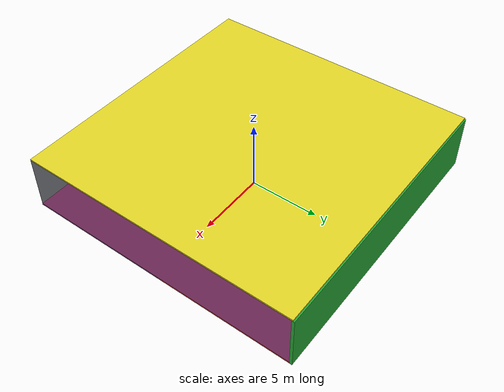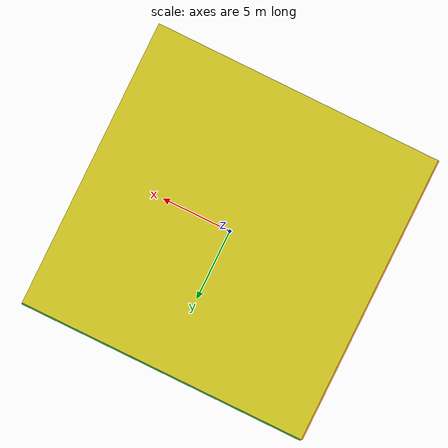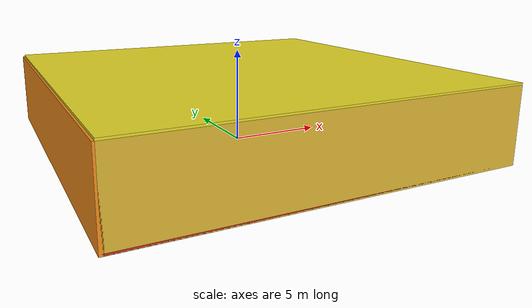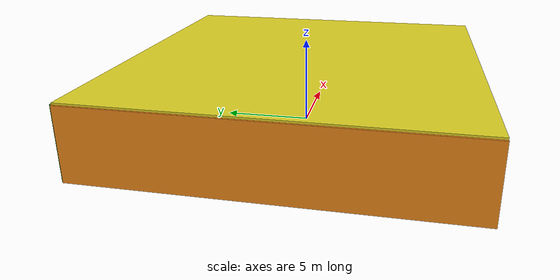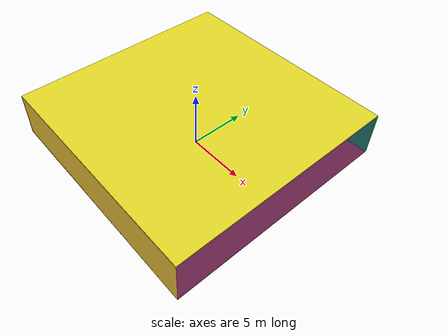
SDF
<sdf version="1.4">
 <world name="default">
  <physics type="ode">
   <max_step_size>0.001</max_step_size>
   <real_time_factor>1</real_time_factor>
   <real_time_update_rate>1000</real_time_update_rate>
   <gravity>0 0 -9.8</gravity>
  </physics>
  <scene><ambient>0.4 0.4 0.4 1</ambient><background>0.7 0.7 0.7 1</background><shadows>1</shadows></scene>
  <model name="Surrounding">
   <static>1</static>
   <link name="Ceiling">
    <collision name="Ceiling_Collision"><geometry><box><size>20 20 0.1</size></box></geometry></collision>
    <visual name="Ceiling_Visual">
     <geometry><box><size>20 20 0.1</size></box></geometry>
     <material>
      <script><uri>file://media/materials/scripts/gazebo.material</uri><name>Gazebo/YellowGlow</name></script>
     </material>
    </visual>
    <pose>0 0 4.05 0 0 0</pose>
   </link>
   <link name="Wall_South">
    <collision name="Wall_South_Collision">
     <geometry><box><size>20 0 4</size></box></geometry>
     <pose>0 0 2 0 -0 0</pose>
    </collision>
    <visual name="Wall_South_Visual">
     <pose>0 0 2 0 -0 0</pose>
     <geometry><box><size>20 0 4</size></box></geometry>
     <material>
      <script><uri>file://media/materials/scripts/gazebo.material</uri><name>Gazebo/Gold</name></script>
     </material>
    </visual>
    <velocity_decay><linear>0</linear><angular>0</angular></velocity_decay>
    <pose>0 -10 0 0 -0 0</pose>
   </link>
   <link name="Wall_East">
    <collision name="Wall_21_Collision">
     <geometry><box><size>20 0 4</size></box></geometry>
     <pose>0 0 2 0 -0 0</pose>
    </collision>
    <visual name="Wall_21_Visual">
     <pose>0 0 2 0 -0 0</pose>
     <geometry><box><size>20 0 4</size></box></geometry>
     <material>
      <script><uri>file://media/materials/scripts/gazebo.material</uri><name>Gazebo/BlueTransparent</name></script>
     </material>
    </visual>
    <velocity_decay><linear>0</linear><angular>0</angular></velocity_decay>
    <pose>10 0 0 0 -0 1.5708</pose>
   </link>
   <link name="Wall_North">
    <collision name="Wall_22_Collision">
     <geometry><box><size>20 0.2 4</size></box></geometry>
     <pose>0 0 2 0 -0 0</pose>
    </collision>
    <visual name="Wall_22_Visual">
     <pose>0 0 2 0 -0 0</pose>
     <geometry><box><size>20 0.2 4</size></box></geometry>
     <material>
      <script><uri>file://media/materials/scripts/gazebo.material</uri><name>Gazebo/Green</name></script>
     </material>
    </visual>
    <velocity_decay><linear>0</linear><angular>0</angular></velocity_decay>
    <pose>0 10 0 0 -0 0</pose>
   </link>
   <link name="Wall_West">
    <collision name="Wall_23_Collision">
     <geometry><box><size>20 0.2 4</size></box></geometry>
     <pose>0 0 2 0 -0 0</pose>
    </collision>
    <visual name="Wall_23_Visual">
     <pose>0 0 2 0 -0 0</pose>
     <geometry><box><size>20 0.2 4</size></box></geometry>
     <material>
      <script><uri>file://media/materials/scripts/gazebo.material</uri><name>Gazebo/Orange</name></script>
     </material>
    </visual>
    <velocity_decay><linear>0</linear><angular>0</angular></velocity_decay>
    <pose>-10 0 0 0 0 -1.5708</pose>
   </link>
   <link name="Ground_link">
    <collision name="collision">
     <pose>0 0 .05 0 -0 0</pose>
     <geometry><box><size>20 20 0.1</size></box></geometry>
    </collision>
    <visual name="visual">
     <pose>0 0 .05 0 -0 0</pose>
     <geometry><box><size>20 20 0.1</size></box></geometry>
     <material>
      <script><uri>file://media/materials/scripts/gazebo.material</uri><name>Gazebo/RedBright</name></script>
     </material>
    </visual>
   </link>
   <static>1</static>
  </model>
  <spherical_coordinates>
   <surface_model>EARTH_WGS84</surface_model>
   <latitude_deg>0</latitude_deg>
   <longitude_deg>0</longitude_deg>
   <elevation>0</elevation>
   <heading_deg>0</heading_deg>
  </spherical_coordinates>
  <light name="lightball_0" type="diffuse">
   <diffuse>0.8 0.8 0.8 1</diffuse>
   <specular>0.2 0.2 0.2 1</specular>
   <attenuation>
    <range>100</range>
    <constant>0.7</constant>
    <linear>0.01</linear>
    <quadratic>0.001</quadratic>
   </attenuation>
   <direction>-0.5 0.1 -0.9</direction>
   <pose>7.54852327711 -3.08211854411 3.17988099224 0 0 0</pose>
  </light>
  <light name="lightball_1" type="diffuse">
   <diffuse>0.8 0.8 0.8 1</diffuse>
   <specular>0.2 0.2 0.2 1</specular>
   <attenuation>
    <range>100</range>
    <constant>0.7</constant>
    <linear>0.01</linear>
    <quadratic>0.001</quadratic>
   </attenuation>
   <direction>-0.5 0.1 -0.9</direction>
   <pose>-4.99762641451 -3.64875494101 1.68130132709 0 0 0</pose>
  </light>
  <light name="lightball_2" type="diffuse">
   <diffuse>0.8 0.8 0.8 1</diffuse>
   <specular>0.2 0.2 0.2 1</specular>
   <attenuation>
    <range>100</range>
    <constant>0.7</constant>
    <linear>0.01</linear>
    <quadratic>0.001</quadratic>
   </attenuation>
   <direction>-0.5 0.1 -0.9</direction>
   <pose>4.70985061659 5.84207292192 0.792381686976 0 0 0</pose>
  </light>
  <light name="lightball_3" type="diffuse">
   <diffuse>0.8 0.8 0.8 1</diffuse>
   <specular>0.2 0.2 0.2 1</specular>
   <attenuation>
    <range>100</range>
    <constant>0.7</constant>
    <linear>0.01</linear>
    <quadratic>0.001</quadratic>
   </attenuation>
   <direction>-0.5 0.1 -0.9</direction>
   <pose>2.82158319345 -0.614540922259 1.03877522002 0 0 0</pose>
  </light>
  <light name="lightball_4" type="diffuse">
   <diffuse>0.8 0.8 0.8 1</diffuse>
   <specular>0.2 0.2 0.2 1</specular>
   <attenuation>
    <range>100</range>
    <constant>0.7</constant>
    <linear>0.01</linear>
    <quadratic>0.001</quadratic>
   </attenuation>
   <direction>-0.5 0.1 -0.9</direction>
   <pose>-2.69734919314 4.84044781376 3.79898217501 0 0 0</pose>
  </light>
  <light name="lightball_5" type="diffuse">
   <diffuse>0.8 0.8 0.8 1</diffuse>
   <specular>0.2 0.2 0.2 1</specular>
   <attenuation>
    <range>100</range>
    <constant>0.7</constant>
    <linear>0.01</linear>
    <quadratic>0.001</quadratic>
   </attenuation>
   <direction>-0.5 0.1 -0.9</direction>
   <pose>6.85653308991 1.23846884364 3.47933614744 0 0 0</pose>
  </light>
  <light name="lightball_6" type="diffuse">
   <diffuse>0.8 0.8 0.8 1</diffuse>
   <specular>0.2 0.2 0.2 1</specular>
   <attenuation>
    <range>100</range>
    <constant>0.7</constant>
    <linear>0.01</linear>
    <quadratic>0.001</quadratic>
   </attenuation>
   <direction>-0.5 0.1 -0.9</direction>
   <pose>7.77454219002 7.34728514918 3.6365865385 0 0 0</pose>
  </light>
  <light name="lightball_7" type="diffuse">
   <diffuse>0.8 0.8 0.8 1</diffuse>
   <specular>0.2 0.2 0.2 1</specular>
   <attenuation>
    <range>100</range>
    <constant>0.7</constant>
    <linear>0.01</linear>
    <quadratic>0.001</quadratic>
   </attenuation>
   <direction>-0.5 0.1 -0.9</direction>
   <pose>2.08151670584 -3.51925843288 3.2000250562 0 0 0</pose>
  </light>
  <light name="lightball_8" type="diffuse">
   <diffuse>0.8 0.8 0.8 1</diffuse>
   <specular>0.2 0.2 0.2 1</specular>
   <attenuation>
    <range>100</range>
    <constant>0.7</constant>
    <linear>0.01</linear>
    <quadratic>0.001</quadratic>
   </attenuation>
   <direction>-0.5 0.1 -0.9</direction>
   <pose>-4.82383440654 -6.44257263329 0.855303472431 0 0 0</pose>
  </light>
  <light name="lightball_9" type="diffuse">
   <diffuse>0.8 0.8 0.8 1</diffuse>
   <specular>0.2 0.2 0.2 1</specular>
   <attenuation>
    <range>100</range>
    <constant>0.7</constant>
    <linear>0.01</linear>
    <quadratic>0.001</quadratic>
   </attenuation>
   <direction>-0.5 0.1 -0.9</direction>
   <pose>-3.09361341431 7.01096302023 0.908758466639 0 0 0</pose>
  </light>
  <include><uri>model://table</uri><pose>-6.84204218738 -1.16128693003 0 0 0 0.275337215806</pose></include>
  <include><uri>model://cabinet</uri><pose>-5.14147704429 8.29816503441 0 0 0 2.10314881227</pose></include>
  <include><uri>model://cabinet</uri><pose>1.5618606618 -1.49958197715 0 0 0 1.04103675947</pose></include>
  <include><uri>model://cabinet</uri><pose>4.29666407546 8.09982251484 0 0 0 3.05516169449</pose></include>
 </world>
</sdf>

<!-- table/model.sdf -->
<sdf version="1.5">
  <model name="table">
    <static>true</static>
    <link name="link">
      <collision name="surface">
        <pose>0 0 1.0 0 0 0</pose>
        <geometry>
          <box>
            <size>1.5 0.8 0.03</size>
          </box>
        </geometry>
        <surface>
          <friction>
            <ode>
              <mu>0.6</mu>
              <mu2>0.6</mu2>
            </ode>
          </friction>
        </surface>
      </collision>
      <visual name="visual1">
        <pose>0 0 1.0 0 0 0</pose>
        <geometry>
          <box>
            <size>1.5 0.8 0.03</size>
          </box>
        </geometry>
        <material>
          <script>
            <uri>model://media/materials/scripts/gazebo.material</uri>
            <name>Gazebo/Wood</name>
          </script>
        </material>
      </visual>
      <collision name="front_left_leg">
        <pose>0.68 0.38 0.5 0 0 0</pose>
        <geometry>
          <cylinder>
            <radius>0.02</radius>
            <length>1.0</length>
          </cylinder>
        </geometry>
      </collision>
      <visual name="front_left_leg">
        <pose>0.68 0.38 0.5 0 0 0</pose>
        <geometry>
          <cylinder>
            <radius>0.02</radius>
            <length>1.0</length>
          </cylinder>
        </geometry>
        <material>
          <script>
            <uri>model://media/materials/scripts/gazebo.material</uri>
            <name>Gazebo/Grey</name>
          </script>
        </material>
      </visual>
      <collision name="front_right_leg">
        <pose>0.68 -0.38 0.5 0 0 0</pose>
        <geometry>
          <cylinder>
            <radius>0.02</radius>
            <length>1.0</length>
          </cylinder>
        </geometry>
      </collision>
      <visual name="front_right_leg">
        <pose>0.68 -0.38 0.5 0 0 0</pose>
        <geometry>
          <cylinder>
            <radius>0.02</radius>
            <length>1.0</length>
          </cylinder>
        </geometry>
        <material>
          <script>
            <uri>model://media/materials/scripts/gazebo.material</uri>
            <name>Gazebo/Grey</name>
          </script>
        </material>
      </visual>
      <collision name="back_right_leg">
        <pose>-0.68 -0.38 0.5 0 0 0</pose>
        <geometry>
          <cylinder>
            <radius>0.02</radius>
            <length>1.0</length>
          </cylinder>
        </geometry>
      </collision>
      <visual name="back_right_leg">
        <pose>-0.68 -0.38 0.5 0 0 0</pose>
        <geometry>
          <cylinder>
            <radius>0.02</radius>
            <length>1.0</length>
          </cylinder>
        </geometry>
        <material>
          <script>
            <uri>model://media/materials/scripts/gazebo.material</uri>
            <name>Gazebo/Grey</name>
          </script>
        </material>
      </visual>
      <collision name="back_left_leg">
        <pose>-0.68 0.38 0.5 0 0 0</pose>
        <geometry>
          <cylinder>
            <radius>0.02</radius>
            <length>1.0</length>
          </cylinder>
        </geometry>
      </collision>
      <visual name="back_left_leg">
        <pose>-0.68 0.38 0.5 0 0 0</pose>
        <geometry>
          <cylinder>
            <radius>0.02</radius>
            <length>1.0</length>
          </cylinder>
        </geometry>
        <material>
          <script>
            <uri>model://media/materials/scripts/gazebo.material</uri>
            <name>Gazebo/Grey</name>
          </script>
        </material>
      </visual>
    </link>
  </model>
</sdf>

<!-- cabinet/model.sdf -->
<sdf version="1.5">
  <model name="cabinet">
    <static>true</static>
    <link name="cabinet_bottom_plate">
      <inertial>
        <pose>0 0 -1 0 0 0</pose>
        <inertia>
          <ixx>2.050000</ixx>
          <ixy>0</ixy>
          <ixz>0</ixz>
          <iyy>2.050000</iyy>
          <iyz>0</iyz>
          <izz>2.050000</izz>
        </inertia>
        <mass>25.000000</mass>
      </inertial>
      <collision name="cabinet_bottom_plate_geom">
        <pose>0 0 0.010000 0 0 0</pose>
        <geometry>
          <box>
            <size>0.450000 0.450000 0.020000</size>
          </box>
        </geometry>
      </collision>
      <visual name="cabinet_bottom_plate_geom_visual">
        <pose>0 0 0.010000 0 0 0</pose>
        <geometry>
          <box>
            <size>0.450000 0.450000 0.020000</size>
          </box>
        </geometry>
        <material>
          <script>
            <uri>model://media/materials/scripts/gazebo.material</uri>
            <name>Gazebo/Wood</name>
          </script>
        </material>
      </visual>
      <collision name="cabinet_bottom_plate_geom_cabinet_back_plate">
        <pose>0.235000 0 0.510000 0 0 0</pose>
        <geometry>
          <box>
            <size>0.020000 0.450000 1.020000</size>
          </box>
        </geometry>
      </collision>
      <visual name="cabinet_bottom_plate_geom_cabinet_back_plate_visual">
        <pose>0.235000 0 0.510000 0 0 0</pose>
        <geometry>
          <box>
            <size>0.020000 0.450000 1.020000</size>
          </box>
        </geometry>
        <material>
          <script>
            <uri>model://media/materials/scripts/gazebo.material</uri>
            <name>Gazebo/Wood</name>
          </script>
        </material>
      </visual>
      <collision name="cabinet_bottom_plate_geom_cabinet_left_plate">
        <pose>0 0.235000 0.510000 0 0 0</pose>
        <geometry>
          <box>
            <size>0.450000 0.020000 1.020000</size>
          </box>
        </geometry>
      </collision>
      <visual name="cabinet_bottom_plate_geom_cabinet_left_plate_visual">
        <pose>0 0.235000 0.510000 0 0 0</pose>
        <geometry>
          <box>
            <size>0.450000 0.020000 1.020000</size>
          </box>
        </geometry>
        <material>
          <script>
            <uri>model://media/materials/scripts/gazebo.material</uri>
            <name>Gazebo/Wood</name>
          </script>
        </material>
      </visual>
      <collision name="cabinet_bottom_plate_geom_cabinet_middle_plate">
        <pose>0 0 0.510000 0 0 0</pose>
        <geometry>
          <box>
            <size>0.450000 0.450000 0.020000</size>
          </box>
        </geometry>
      </collision>
      <visual name="cabinet_bottom_plate_geom_cabinet_middle_plate_visual">
        <pose>0 0 0.510000 0 0 0</pose>
        <geometry>
          <box>
            <size>0.450000 0.450000 0.020000</size>
          </box>
        </geometry>
        <material>
          <script>
            <uri>model://media/materials/scripts/gazebo.material</uri>
            <name>Gazebo/Wood</name>
          </script>
        </material>
      </visual>
      <collision name="cabinet_bottom_plate_geom_cabinet_right_plate">
        <pose>0 -0.235000 0.510000 0 0 0</pose>
        <geometry>
          <box>
            <size>0.450000 0.020000 1.020000</size>
          </box>
        </geometry>
      </collision>
      <visual name="cabinet_bottom_plate_geom_cabinet_right_plate_visual">
        <pose>0 -0.235000 0.510000 0 0 0</pose>
        <geometry>
          <box>
            <size>0.450000 0.020000 1.020000</size>
          </box>
        </geometry>
        <material>
          <script>
            <uri>model://media/materials/scripts/gazebo.material</uri>
            <name>Gazebo/Wood</name>
          </script>
        </material>
      </visual>
      <collision name="cabinet_bottom_plate_geom_cabinet_top_plate">
        <pose>0 0 1.010000 0 0 0</pose>
        <geometry>
          <box>
            <size>0.450000 0.450000 0.020000</size>
          </box>
        </geometry>
      </collision>
      <visual name="cabinet_bottom_plate_geom_cabinet_top_plate_visual">
        <pose>0 0 1.010000 0 0 0</pose>
        <geometry>
          <box>
            <size>0.450000 0.450000 0.020000</size>
          </box>
        </geometry>
        <material>
          <script>
            <uri>model://media/materials/scripts/gazebo.material</uri>
            <name>Gazebo/Wood</name>
          </script>
        </material>
      </visual>
    </link>
  </model>
</sdf>
